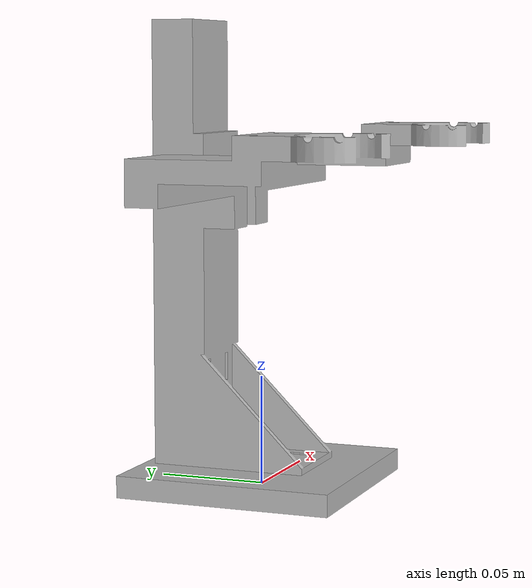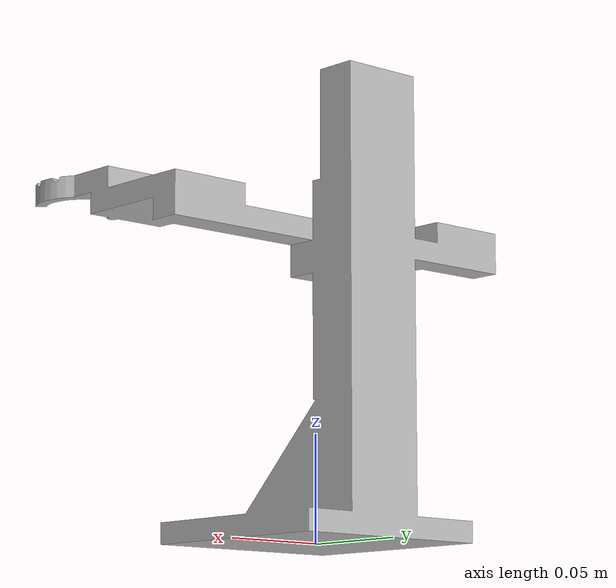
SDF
<?xml version="1.0" ?>
<sdf version="1.6">
  <model name="tool_holder">
    <static>true</static>
    <link name="tool_holder_link">
      <inertial auto="true"/>

      <visual name="visual">
        <geometry>
          <mesh>
            <uri>model://tool_holder/meshes/tool_holder.gltf</uri>
          </mesh>
        </geometry>
      </visual>

      <collision name="collision">
        <density>2700</density>
        <geometry>
          <mesh>
            <uri>model://tool_holder/meshes/tool_holder.stl</uri>
          </mesh>
        </geometry>
      </collision>
    </link>

    <link name="vg_2_slot">
      <pose>0.08 -0.0675 0.16437 3.14 0 0</pose>
    </link>
    <link name="vg_4_slot">
      <pose>-0.08 -0.0675 0.16437 3.14 0 0</pose>
    </link>

    <joint name="base_to_vg_2_slot" type="fixed">
      <parent>tool_holder_link</parent>
      <child>vg_2_slot</child>
    </joint>
    <joint name="base_to_vg_4_slot" type="fixed">
      <parent>tool_holder_link</parent>
      <child>vg_4_slot</child>
    </joint>

    <plugin
      filename="libToolStandPlugin.so"
      name="ariac_plugins::ToolStandPlugin">
    </plugin>

    <plugin
      filename="libTFPublisherPlugin.so"
      name="ariac_plugins::TFPublisherPlugin">
      <base_link>tool_holder_link</base_link>
      <static>true</static>
      <child link="vg_2_slot" frame="vg_2"/>
      <child link="vg_4_slot" frame="vg_4"/>
    </plugin>
  </model>
</sdf>
